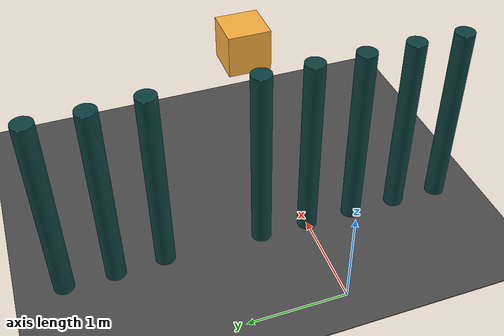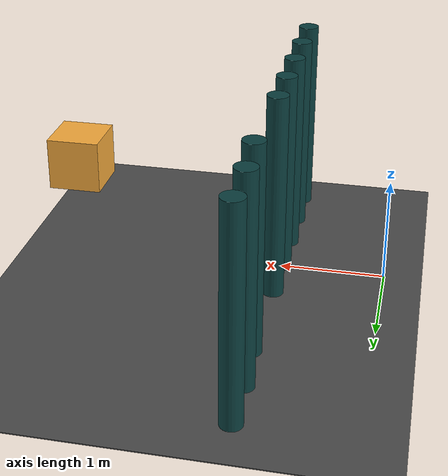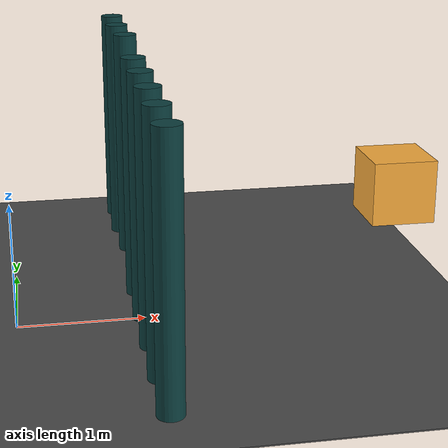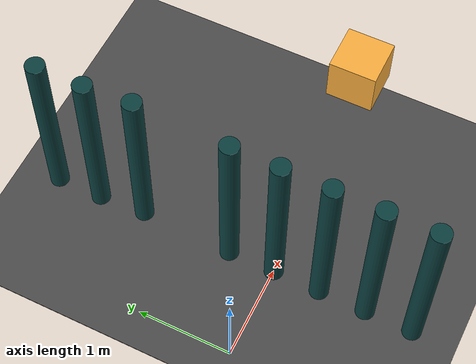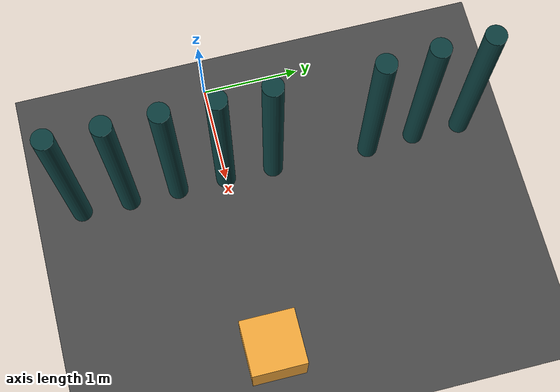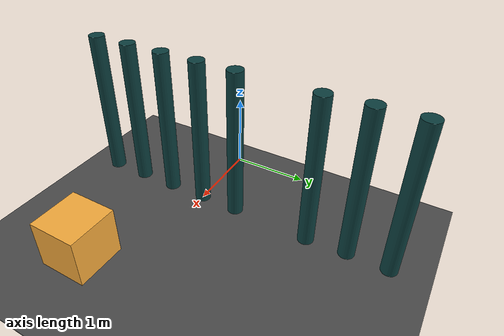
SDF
<sdf version="1.6">
 <world name="default">
  <light name="sun" type="directional">
   <pose>0 0 10 0 -0 0</pose>
   <diffuse>0.8 0.8 0.8 1</diffuse>
   <specular>0.2 0.2 0.2 1</specular>
   <attenuation>
    <range>1000</range>
    <constant>0.9</constant>
    <linear>0.01</linear>
    <quadratic>0.001</quadratic>
   </attenuation>
   <direction>-0.5 0.1 -0.9</direction>
  </light>
  <plugin name="ros_interface_plugin" filename="librotors_gazebo_ros_interface_plugin.so"/>
  <gravity>0 0 -9.8</gravity>
  <magnetic_field>6e-06 2.3e-05 -4.2e-05</magnetic_field>
  <atmosphere type="adiabatic"/>
  <physics name="default_physics" default="0" type="ode">
   <max_step_size>0.001</max_step_size>
   <real_time_factor>1</real_time_factor>
   <real_time_update_rate>1000</real_time_update_rate>
  </physics>
  <scene>
   <ambient>0.78 0.78 0.78 1</ambient>
   <background>0.35 0.35 0.35 1</background>
   <shadows>1</shadows>
  </scene>
  <spherical_coordinates>
   <surface_model>EARTH_WGS84</surface_model>
   <latitude_deg>0</latitude_deg>
   <longitude_deg>0</longitude_deg>
   <elevation>0</elevation>
   <heading_deg>0</heading_deg>
  </spherical_coordinates>
  <model name="env_plane">
   <link name="link">
    <inertial>
     <mass>1</mass>
     <inertia><ixx>1</ixx><ixy>0</ixy><ixz>0</ixz><iyy>1</iyy><iyz>0</iyz><izz>1</izz></inertia>
    </inertial>
    <visual name="visual">
     <cast_shadows>0</cast_shadows>
     <geometry><box><size>15 15 0.01</size></box></geometry>
     <material>
      <script>
       <uri>model://asphalt_plane/materials/scripts</uri>
       <uri>model://asphalt_plane/materials/textures</uri>
       <name>vrc/asphalt</name>
      </script>
      <shader type="pixel"><normal_map>__default__</normal_map></shader>
      <diffuse>0.7 0.7 0.7 1</diffuse>
      <ambient>0.5 0.5 0.5 1</ambient>
      <specular>0.5 0.5 0.5 1</specular>
      <emissive>0.7 0.7 0.7 1</emissive>
     </material>
    </visual>
    <collision name="collision">
     <geometry><box><size>20 20 0.1</size></box></geometry>
     <surface>
      <friction>
       <ode><mu>1</mu><mu2>1</mu2><fdir1>0 0 0</fdir1><slip1>0</slip1><slip2>0</slip2></ode>
       <torsional>
        <coefficient>1</coefficient>
        <patch_radius>0</patch_radius>
        <surface_radius>0</surface_radius>
        <use_patch_radius>1</use_patch_radius>
        <ode><slip>0</slip></ode>
       </torsional>
      </friction>
      <bounce><restitution_coefficient>0</restitution_coefficient><threshold>1e+06</threshold></bounce>
      <contact>
       <collide_without_contact>0</collide_without_contact>
       <collide_without_contact_bitmask>1</collide_without_contact_bitmask>
       <collide_bitmask>1</collide_bitmask>
       <ode>
        <soft_cfm>0</soft_cfm>
        <soft_erp>0.2</soft_erp>
        <kp>1e+13</kp>
        <kd>1</kd>
        <max_vel>0.01</max_vel>
        <min_depth>0</min_depth>
       </ode>
       <bullet>
        <split_impulse>1</split_impulse>
        <split_impulse_penetration_threshold>-0.01</split_impulse_penetration_threshold>
        <soft_cfm>0</soft_cfm>
        <soft_erp>0.2</soft_erp>
        <kp>1e+13</kp>
        <kd>1</kd>
       </bullet>
      </contact>
     </surface>
    </collision>
   </link>
   <static>1</static>
   <pose>4 0 0 0 -0 0</pose>
  </model>
  <model name="obstacle">
   <link name="link">
    <inertial>
     <mass>112.569</mass>
     <inertia><ixx>33.2512</ixx><ixy>0</ixy><ixz>0</ixz><iyy>33.2512</iyy><iyz>0</iyz><izz>0.537779</izz></inertia>
    </inertial>
    <visual name="visual">
     <geometry><cylinder><radius>0.1</radius><length>2</length></cylinder></geometry>
     <material>
      <script><name>Gazebo/Grey</name><uri>file://media/materials/scripts/gazebo.material</uri></script>
      <shader type="pixel"><normal_map>__default__</normal_map></shader>
      <ambient>0.05 0.25 0.25 1</ambient>
      <diffuse>0.3 0.3 0.3 1</diffuse>
      <specular>0.01 0.01 0.01 1</specular>
      <emissive>0.1 0.1 0.1 1</emissive>
      <lighting>1</lighting>
     </material>
    </visual>
    <collision name="collision">
     <geometry><cylinder><radius>0.097748</radius><length>1.87509</length></cylinder></geometry>
     <surface>
      <friction>
       <ode><mu>1</mu><mu2>1</mu2><fdir1>0 0 0</fdir1><slip1>0</slip1><slip2>0</slip2></ode>
       <torsional>
        <coefficient>1</coefficient>
        <patch_radius>0</patch_radius>
        <surface_radius>0</surface_radius>
        <use_patch_radius>1</use_patch_radius>
        <ode><slip>0</slip></ode>
       </torsional>
      </friction>
      <bounce><restitution_coefficient>0</restitution_coefficient><threshold>1e+06</threshold></bounce>
      <contact>
       <collide_without_contact>0</collide_without_contact>
       <collide_without_contact_bitmask>1</collide_without_contact_bitmask>
       <collide_bitmask>1</collide_bitmask>
       <ode>
        <soft_cfm>0</soft_cfm>
        <soft_erp>0.2</soft_erp>
        <kp>1e+13</kp>
        <kd>1</kd>
        <max_vel>0.01</max_vel>
        <min_depth>0</min_depth>
       </ode>
       <bullet>
        <split_impulse>1</split_impulse>
        <split_impulse_penetration_threshold>-0.01</split_impulse_penetration_threshold>
        <soft_cfm>0</soft_cfm>
        <soft_erp>0.2</soft_erp>
        <kp>1e+13</kp>
        <kd>1</kd>
       </bullet>
      </contact>
     </surface>
    </collision>
   </link>
   <static>0</static>
   <pose>1.00029 0 0.987551 -5.8e-05 2.7e-05 0.006767</pose>
  </model>
  <model name="obstacle_clone">
   <link name="link">
    <inertial>
     <mass>112.569</mass>
     <inertia><ixx>33.2512</ixx><ixy>0</ixy><ixz>0</ixz><iyy>33.2512</iyy><iyz>0</iyz><izz>0.537779</izz></inertia>
    </inertial>
    <visual name="visual">
     <geometry><cylinder><radius>0.1</radius><length>2</length></cylinder></geometry>
     <material>
      <script><name>Gazebo/Grey</name><uri>file://media/materials/scripts/gazebo.material</uri></script>
      <shader type="pixel"><normal_map>__default__</normal_map></shader>
      <ambient>0.05 0.25 0.25 1</ambient>
      <diffuse>0.3 0.3 0.3 1</diffuse>
      <specular>0.01 0.01 0.01 1</specular>
      <emissive>0.1 0.1 0.1 1</emissive>
      <lighting>1</lighting>
     </material>
    </visual>
    <collision name="collision">
     <geometry><cylinder><radius>0.097748</radius><length>1.87509</length></cylinder></geometry>
     <surface>
      <friction>
       <ode><mu>1</mu><mu2>1</mu2><fdir1>0 0 0</fdir1><slip1>0</slip1><slip2>0</slip2></ode>
       <torsional>
        <coefficient>1</coefficient>
        <patch_radius>0</patch_radius>
        <surface_radius>0</surface_radius>
        <use_patch_radius>1</use_patch_radius>
        <ode><slip>0</slip></ode>
       </torsional>
      </friction>
      <bounce><restitution_coefficient>0</restitution_coefficient><threshold>1e+06</threshold></bounce>
      <contact>
       <collide_without_contact>0</collide_without_contact>
       <collide_without_contact_bitmask>1</collide_without_contact_bitmask>
       <collide_bitmask>1</collide_bitmask>
       <ode>
        <soft_cfm>0</soft_cfm>
        <soft_erp>0.2</soft_erp>
        <kp>1e+13</kp>
        <kd>1</kd>
        <max_vel>0.01</max_vel>
        <min_depth>0</min_depth>
       </ode>
       <bullet>
        <split_impulse>1</split_impulse>
        <split_impulse_penetration_threshold>-0.01</split_impulse_penetration_threshold>
        <soft_cfm>0</soft_cfm>
        <soft_erp>0.2</soft_erp>
        <kp>1e+13</kp>
        <kd>1</kd>
       </bullet>
      </contact>
     </surface>
    </collision>
   </link>
   <static>0</static>
   <pose>1.00031 2.5 0.987542 -5.8e-05 2.6e-05 0.007095</pose>
  </model>
  <model name="obstacle_clone_0">
   <link name="link">
    <inertial>
     <mass>112.569</mass>
     <inertia><ixx>33.2512</ixx><ixy>0</ixy><ixz>0</ixz><iyy>33.2512</iyy><iyz>0</iyz><izz>0.537779</izz></inertia>
    </inertial>
    <visual name="visual">
     <geometry><cylinder><radius>0.1</radius><length>2</length></cylinder></geometry>
     <material>
      <script><name>Gazebo/Grey</name><uri>file://media/materials/scripts/gazebo.material</uri></script>
      <shader type="pixel"><normal_map>__default__</normal_map></shader>
      <ambient>0.05 0.25 0.25 1</ambient>
      <diffuse>0.3 0.3 0.3 1</diffuse>
      <specular>0.01 0.01 0.01 1</specular>
      <emissive>0.1 0.1 0.1 1</emissive>
      <lighting>1</lighting>
     </material>
    </visual>
    <collision name="collision">
     <geometry><cylinder><radius>0.097748</radius><length>1.87509</length></cylinder></geometry>
     <surface>
      <friction>
       <ode><mu>1</mu><mu2>1</mu2><fdir1>0 0 0</fdir1><slip1>0</slip1><slip2>0</slip2></ode>
       <torsional>
        <coefficient>1</coefficient>
        <patch_radius>0</patch_radius>
        <surface_radius>0</surface_radius>
        <use_patch_radius>1</use_patch_radius>
        <ode><slip>0</slip></ode>
       </torsional>
      </friction>
      <bounce><restitution_coefficient>0</restitution_coefficient><threshold>1e+06</threshold></bounce>
      <contact>
       <collide_without_contact>0</collide_without_contact>
       <collide_without_contact_bitmask>1</collide_without_contact_bitmask>
       <collide_bitmask>1</collide_bitmask>
       <ode>
        <soft_cfm>0</soft_cfm>
        <soft_erp>0.2</soft_erp>
        <kp>1e+13</kp>
        <kd>1</kd>
        <max_vel>0.01</max_vel>
        <min_depth>0</min_depth>
       </ode>
       <bullet>
        <split_impulse>1</split_impulse>
        <split_impulse_penetration_threshold>-0.01</split_impulse_penetration_threshold>
        <soft_cfm>0</soft_cfm>
        <soft_erp>0.2</soft_erp>
        <kp>1e+13</kp>
        <kd>1</kd>
       </bullet>
      </contact>
     </surface>
    </collision>
   </link>
   <static>0</static>
   <pose>1.03008 1.50003 0.987541 -5.8e-05 2.5e-05 0.006556</pose>
  </model>
  <model name="obstacle_clone_1">
   <link name="link">
    <inertial>
     <mass>112.569</mass>
     <inertia><ixx>33.2512</ixx><ixy>0</ixy><ixz>0</ixz><iyy>33.2512</iyy><iyz>0</iyz><izz>0.537779</izz></inertia>
    </inertial>
    <visual name="visual">
     <geometry><cylinder><radius>0.1</radius><length>2</length></cylinder></geometry>
     <material>
      <script><name>Gazebo/Grey</name><uri>file://media/materials/scripts/gazebo.material</uri></script>
      <shader type="pixel"><normal_map>__default__</normal_map></shader>
      <ambient>0.05 0.25 0.25 1</ambient>
      <diffuse>0.3 0.3 0.3 1</diffuse>
      <specular>0.01 0.01 0.01 1</specular>
      <emissive>0.1 0.1 0.1 1</emissive>
      <lighting>1</lighting>
     </material>
    </visual>
    <collision name="collision">
     <geometry><cylinder><radius>0.097748</radius><length>1.87509</length></cylinder></geometry>
     <surface>
      <friction>
       <ode><mu>1</mu><mu2>1</mu2><fdir1>0 0 0</fdir1><slip1>0</slip1><slip2>0</slip2></ode>
       <torsional>
        <coefficient>1</coefficient>
        <patch_radius>0</patch_radius>
        <surface_radius>0</surface_radius>
        <use_patch_radius>1</use_patch_radius>
        <ode><slip>0</slip></ode>
       </torsional>
      </friction>
      <bounce><restitution_coefficient>0</restitution_coefficient><threshold>1e+06</threshold></bounce>
      <contact>
       <collide_without_contact>0</collide_without_contact>
       <collide_without_contact_bitmask>1</collide_without_contact_bitmask>
       <collide_bitmask>1</collide_bitmask>
       <ode>
        <soft_cfm>0</soft_cfm>
        <soft_erp>0.2</soft_erp>
        <kp>1e+13</kp>
        <kd>1</kd>
        <max_vel>0.01</max_vel>
        <min_depth>0</min_depth>
       </ode>
       <bullet>
        <split_impulse>1</split_impulse>
        <split_impulse_penetration_threshold>-0.01</split_impulse_penetration_threshold>
        <soft_cfm>0</soft_cfm>
        <soft_erp>0.2</soft_erp>
        <kp>1e+13</kp>
        <kd>1</kd>
       </bullet>
      </contact>
     </surface>
    </collision>
   </link>
   <static>0</static>
   <pose>1.00019 2.0 0.987542 -6e-05 2.9e-05 0.011547</pose>
  </model>
  <model name="obstacle_clone_3">
   <link name="link">
    <inertial>
     <mass>112.569</mass>
     <inertia><ixx>33.2512</ixx><ixy>0</ixy><ixz>0</ixz><iyy>33.2512</iyy><iyz>0</iyz><izz>0.537779</izz></inertia>
    </inertial>
    <visual name="visual">
     <geometry><cylinder><radius>0.1</radius><length>2</length></cylinder></geometry>
     <material>
      <script><name>Gazebo/Grey</name><uri>file://media/materials/scripts/gazebo.material</uri></script>
      <shader type="pixel"><normal_map>__default__</normal_map></shader>
      <ambient>0.05 0.25 0.25 1</ambient>
      <diffuse>0.3 0.3 0.3 1</diffuse>
      <specular>0.01 0.01 0.01 1</specular>
      <emissive>0.1 0.1 0.1 1</emissive>
      <lighting>1</lighting>
     </material>
    </visual>
    <collision name="collision">
     <geometry><cylinder><radius>0.097748</radius><length>1.87509</length></cylinder></geometry>
     <surface>
      <friction>
       <ode><mu>1</mu><mu2>1</mu2><fdir1>0 0 0</fdir1><slip1>0</slip1><slip2>0</slip2></ode>
       <torsional>
        <coefficient>1</coefficient>
        <patch_radius>0</patch_radius>
        <surface_radius>0</surface_radius>
        <use_patch_radius>1</use_patch_radius>
        <ode><slip>0</slip></ode>
       </torsional>
      </friction>
      <bounce><restitution_coefficient>0</restitution_coefficient><threshold>1e+06</threshold></bounce>
      <contact>
       <collide_without_contact>0</collide_without_contact>
       <collide_without_contact_bitmask>1</collide_without_contact_bitmask>
       <collide_bitmask>1</collide_bitmask>
       <ode>
        <soft_cfm>0</soft_cfm>
        <soft_erp>0.2</soft_erp>
        <kp>1e+13</kp>
        <kd>1</kd>
        <max_vel>0.01</max_vel>
        <min_depth>0</min_depth>
       </ode>
       <bullet>
        <split_impulse>1</split_impulse>
        <split_impulse_penetration_threshold>-0.01</split_impulse_penetration_threshold>
        <soft_cfm>0</soft_cfm>
        <soft_erp>0.2</soft_erp>
        <kp>1e+13</kp>
        <kd>1</kd>
       </bullet>
      </contact>
     </surface>
    </collision>
   </link>
   <static>0</static>
   <pose>1.00008 -0.5 0.987542 -6.3e-05 2.7e-05 0.006627</pose>
  </model>
  <model name="obstacle_clone_4">
   <link name="link">
    <inertial>
     <mass>112.569</mass>
     <inertia><ixx>33.2512</ixx><ixy>0</ixy><ixz>0</ixz><iyy>33.2512</iyy><iyz>0</iyz><izz>0.537779</izz></inertia>
    </inertial>
    <visual name="visual">
     <geometry><cylinder><radius>0.1</radius><length>2</length></cylinder></geometry>
     <material>
      <script><name>Gazebo/Grey</name><uri>file://media/materials/scripts/gazebo.material</uri></script>
      <shader type="pixel"><normal_map>__default__</normal_map></shader>
      <ambient>0.05 0.25 0.25 1</ambient>
      <diffuse>0.3 0.3 0.3 1</diffuse>
      <specular>0.01 0.01 0.01 1</specular>
      <emissive>0.1 0.1 0.1 1</emissive>
      <lighting>1</lighting>
     </material>
    </visual>
    <collision name="collision">
     <geometry><cylinder><radius>0.097748</radius><length>1.87509</length></cylinder></geometry>
     <surface>
      <friction>
       <ode><mu>1</mu><mu2>1</mu2><fdir1>0 0 0</fdir1><slip1>0</slip1><slip2>0</slip2></ode>
       <torsional>
        <coefficient>1</coefficient>
        <patch_radius>0</patch_radius>
        <surface_radius>0</surface_radius>
        <use_patch_radius>1</use_patch_radius>
        <ode><slip>0</slip></ode>
       </torsional>
      </friction>
      <bounce><restitution_coefficient>0</restitution_coefficient><threshold>1e+06</threshold></bounce>
      <contact>
       <collide_without_contact>0</collide_without_contact>
       <collide_without_contact_bitmask>1</collide_without_contact_bitmask>
       <collide_bitmask>1</collide_bitmask>
       <ode>
        <soft_cfm>0</soft_cfm>
        <soft_erp>0.2</soft_erp>
        <kp>1e+13</kp>
        <kd>1</kd>
        <max_vel>0.01</max_vel>
        <min_depth>0</min_depth>
       </ode>
       <bullet>
        <split_impulse>1</split_impulse>
        <split_impulse_penetration_threshold>-0.01</split_impulse_penetration_threshold>
        <soft_cfm>0</soft_cfm>
        <soft_erp>0.2</soft_erp>
        <kp>1e+13</kp>
        <kd>1</kd>
       </bullet>
      </contact>
     </surface>
    </collision>
   </link>
   <static>0</static>
   <pose>1.00014 -1.0 0.987541 -5.4e-05 2.3e-05 0.011377</pose>
  </model>
  <model name="obstacle_clone_5">
   <link name="link">
    <inertial>
     <mass>112.569</mass>
     <inertia><ixx>33.2512</ixx><ixy>0</ixy><ixz>0</ixz><iyy>33.2512</iyy><iyz>0</iyz><izz>0.537779</izz></inertia>
    </inertial>
    <visual name="visual">
     <geometry><cylinder><radius>0.1</radius><length>2</length></cylinder></geometry>
     <material>
      <script><name>Gazebo/Grey</name><uri>file://media/materials/scripts/gazebo.material</uri></script>
      <shader type="pixel"><normal_map>__default__</normal_map></shader>
      <ambient>0.05 0.25 0.25 1</ambient>
      <diffuse>0.3 0.3 0.3 1</diffuse>
      <specular>0.01 0.01 0.01 1</specular>
      <emissive>0.1 0.1 0.1 1</emissive>
      <lighting>1</lighting>
     </material>
    </visual>
    <collision name="collision">
     <geometry><cylinder><radius>0.097748</radius><length>1.87509</length></cylinder></geometry>
     <surface>
      <friction>
       <ode><mu>1</mu><mu2>1</mu2><fdir1>0 0 0</fdir1><slip1>0</slip1><slip2>0</slip2></ode>
       <torsional>
        <coefficient>1</coefficient>
        <patch_radius>0</patch_radius>
        <surface_radius>0</surface_radius>
        <use_patch_radius>1</use_patch_radius>
        <ode><slip>0</slip></ode>
       </torsional>
      </friction>
      <bounce><restitution_coefficient>0</restitution_coefficient><threshold>1e+06</threshold></bounce>
      <contact>
       <collide_without_contact>0</collide_without_contact>
       <collide_without_contact_bitmask>1</collide_without_contact_bitmask>
       <collide_bitmask>1</collide_bitmask>
       <ode>
        <soft_cfm>0</soft_cfm>
        <soft_erp>0.2</soft_erp>
        <kp>1e+13</kp>
        <kd>1</kd>
        <max_vel>0.01</max_vel>
        <min_depth>0</min_depth>
       </ode>
       <bullet>
        <split_impulse>1</split_impulse>
        <split_impulse_penetration_threshold>-0.01</split_impulse_penetration_threshold>
        <soft_cfm>0</soft_cfm>
        <soft_erp>0.2</soft_erp>
        <kp>1e+13</kp>
        <kd>1</kd>
       </bullet>
      </contact>
     </surface>
    </collision>
   </link>
   <static>0</static>
   <pose>1.00008 -1.5 0.98755 -5.1e-05 2.4e-05 0.006669</pose>
  </model>
  <model name="obstacle_clone_6">
   <link name="link">
    <inertial>
     <mass>112.569</mass>
     <inertia><ixx>33.2512</ixx><ixy>0</ixy><ixz>0</ixz><iyy>33.2512</iyy><iyz>0</iyz><izz>0.537779</izz></inertia>
    </inertial>
    <visual name="visual">
     <geometry><cylinder><radius>0.1</radius><length>2</length></cylinder></geometry>
     <material>
      <script><name>Gazebo/Grey</name><uri>file://media/materials/scripts/gazebo.material</uri></script>
      <shader type="pixel"><normal_map>__default__</normal_map></shader>
      <ambient>0.05 0.25 0.25 1</ambient>
      <diffuse>0.3 0.3 0.3 1</diffuse>
      <specular>0.01 0.01 0.01 1</specular>
      <emissive>0.1 0.1 0.1 1</emissive>
      <lighting>1</lighting>
     </material>
    </visual>
    <collision name="collision">
     <geometry><cylinder><radius>0.097748</radius><length>1.87509</length></cylinder></geometry>
     <surface>
      <friction>
       <ode><mu>1</mu><mu2>1</mu2><fdir1>0 0 0</fdir1><slip1>0</slip1><slip2>0</slip2></ode>
       <torsional>
        <coefficient>1</coefficient>
        <patch_radius>0</patch_radius>
        <surface_radius>0</surface_radius>
        <use_patch_radius>1</use_patch_radius>
        <ode><slip>0</slip></ode>
       </torsional>
       <model name="obstacle_clone_6">
        <link name="link">
         <inertial>
          <mass>112.569</mass>
          <inertia><ixx>33.2512</ixx><ixy>0</ixy><ixz>0</ixz><iyy>33.2512</iyy><iyz>0</iyz><izz>0.537779</izz></inertia>
         </inertial>
         <visual name="visual">
          <geometry><cylinder><radius>0.1</radius><length>2</length></cylinder></geometry>
          <material>
           <script><name>Gazebo/Grey</name><uri>file://media/materials/scripts/gazebo.material</uri></script>
           <shader type="pixel"><normal_map>__default__</normal_map></shader>
           <ambient>0.05 0.25 0.25 1</ambient>
           <diffuse>0.3 0.3 0.3 1</diffuse>
           <specular>0.01 0.01 0.01 1</specular>
           <emissive>0.1 0.1 0.1 1</emissive>
           <lighting>1</lighting>
          </material>
         </visual>
         <collision name="collision">
          <geometry><cylinder><radius>0.097748</radius><length>1.87509</length></cylinder></geometry>
          <surface>
           <friction>
            <ode><mu>1</mu><mu2>1</mu2><fdir1>0 0 0</fdir1><slip1>0</slip1><slip2>0</slip2></ode>
            <torsional>
             <coefficient>1</coefficient>
             <patch_radius>0</patch_radius>
             <surface_radius>0</surface_radius>
             <use_patch_radius>1</use_patch_radius>
             <ode><slip>0</slip></ode>
            </torsional>
           </friction>
           <bounce><restitution_coefficient>0</restitution_coefficient><threshold>1e+06</threshold></bounce>
           <contact>
            <collide_without_contact>0</collide_without_contact>
            <collide_without_contact_bitmask>1</collide_without_contact_bitmask>
            <collide_bitmask>1</collide_bitmask>
            <ode>
             <soft_cfm>0</soft_cfm>
             <soft_erp>0.2</soft_erp>
             <kp>1e+13</kp>
             <kd>1</kd>
             <max_vel>0.01</max_vel>
             <min_depth>0</min_depth>
            </ode>
            <bullet>
             <split_impulse>1</split_impulse>
             <split_impulse_penetration_threshold>-0.01</split_impulse_penetration_threshold>
             <soft_cfm>0</soft_cfm>
             <soft_erp>0.2</soft_erp>
             <kp>1e+13</kp>
             <kd>1</kd>
            </bullet>
           </contact>
          </surface>
         </collision>
        </link>
        <static>0</static>
        <pose>1.49443 -6.39184 0.987551 -5.5e-05 3e-05 0.005635</pose>
       </model>
      </friction>
      <bounce><restitution_coefficient>0</restitution_coefficient><threshold>1e+06</threshold></bounce>
      <contact>
       <collide_without_contact>0</collide_without_contact>
       <collide_without_contact_bitmask>1</collide_without_contact_bitmask>
       <collide_bitmask>1</collide_bitmask>
       <ode>
        <soft_cfm>0</soft_cfm>
        <soft_erp>0.2</soft_erp>
        <kp>1e+13</kp>
        <kd>1</kd>
        <max_vel>0.01</max_vel>
        <min_depth>0</min_depth>
       </ode>
       <bullet>
        <split_impulse>1</split_impulse>
        <split_impulse_penetration_threshold>-0.01</split_impulse_penetration_threshold>
        <soft_cfm>0</soft_cfm>
        <soft_erp>0.2</soft_erp>
        <kp>1e+13</kp>
        <kd>1</kd>
       </bullet>
      </contact>
     </surface>
    </collision>
   </link>
   <static>0</static>
   <pose>1.00006 0.5 0.987542 -5.7e-05 2.5e-05 0.006506</pose>
  </model>
  <model name="destination">
   <link name="link">
    <inertial>
     <mass>0.0182097</mass>
     <inertia>
      <ixx>2.41e-05</ixx>
      <ixy>0</ixy>
      <ixz>0</ixz>
      <iyy>1.97e-05</iyy>
      <iyz>0</iyz>
      <izz>2.207e-05</izz>
     </inertia>
    </inertial>
    <gravity>0</gravity>
    <visual name="visual">
     <geometry><box><size>0.5 0.5 0.5</size></box></geometry>
     <material>
      <script><name>Gazebo/Grey</name><uri>file://media/materials/scripts/gazebo.material</uri></script>
      <shader type="pixel"><normal_map>__default__</normal_map></shader>
      <ambient>0.988 0.686 0.243 1</ambient>
      <diffuse>0.988 0.686 0.243 1</diffuse>
      <specular>0.988 0.686 0.243 1</specular>
      <emissive>0.988 0.686 0.243 1</emissive>
     </material>
    </visual>
    <collision name="collision">
     <geometry><box><size>0.5 0.5 0.5</size></box></geometry>
     <surface>
      <friction>
       <ode><mu>1</mu><mu2>1</mu2><fdir1>0 0 0</fdir1><slip1>0</slip1><slip2>0</slip2></ode>
       <torsional>
        <coefficient>1</coefficient>
        <patch_radius>0</patch_radius>
        <surface_radius>0</surface_radius>
        <use_patch_radius>1</use_patch_radius>
        <ode><slip>0</slip></ode>
       </torsional>
      </friction>
      <bounce><restitution_coefficient>0</restitution_coefficient><threshold>1e+06</threshold></bounce>
      <contact>
       <collide_without_contact>1</collide_without_contact>
       <collide_without_contact_bitmask>1</collide_without_contact_bitmask>
       <collide_bitmask>1</collide_bitmask>
       <ode>
        <soft_cfm>0</soft_cfm>
        <soft_erp>0.2</soft_erp>
        <kp>1e+13</kp>
        <kd>1</kd>
        <max_vel>0.01</max_vel>
        <min_depth>0</min_depth>
       </ode>
       <bullet>
        <split_impulse>1</split_impulse>
        <split_impulse_penetration_threshold>-0.01</split_impulse_penetration_threshold>
        <soft_cfm>0</soft_cfm>
        <soft_erp>0.2</soft_erp>
        <kp>1e+13</kp>
        <kd>1</kd>
       </bullet>
      </contact>
     </surface>
    </collision>
   </link>
   <static>0</static>
   <pose>3 0 1 0 -0 0</pose>
  </model>
 </world>
</sdf>
